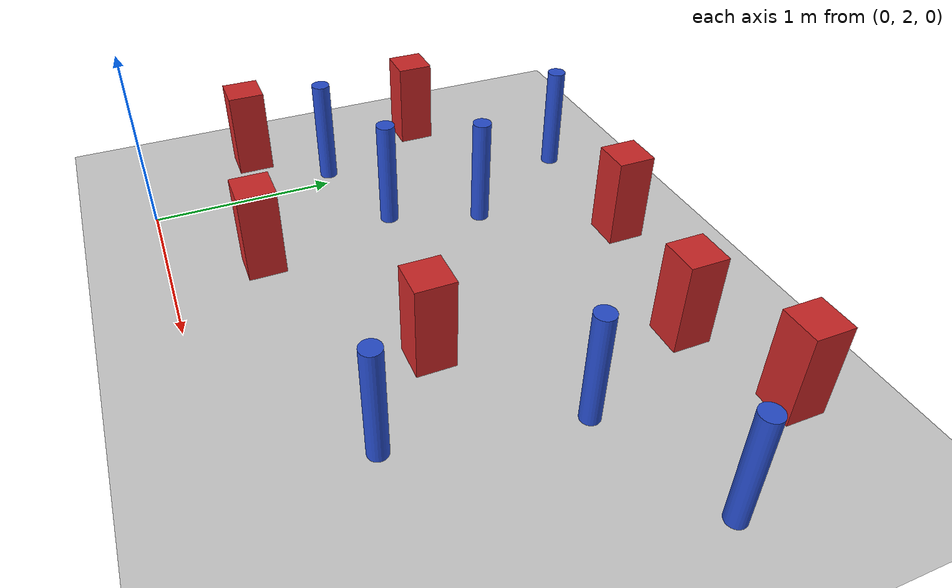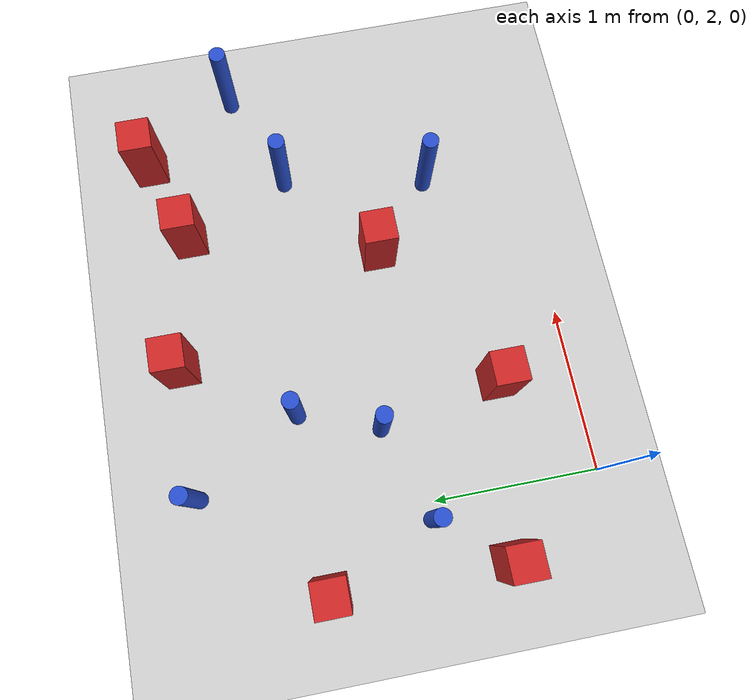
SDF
<sdf version="1.6">
 <world name="default">
  <model name="ground_plane">
   <static>1</static>
   <link name="link">
    <collision name="collision">
     <geometry><plane><normal>0 0 1</normal><size>100 100</size></plane></geometry>
     <surface><friction><ode><mu>100</mu><mu2>50</mu2></ode></friction></surface>
    </collision>
    <visual name="visual">
     <cast_shadows>0</cast_shadows>
     <geometry><plane><normal>0 0 1</normal><size>100 100</size></plane></geometry>
     <material>
      <ambient>1.0 1.0 1.0 1.0</ambient>
      <diffuse>0.8 0.8 0.8 1.0</diffuse>
      <specular>0.01 0.01 0.01 1.000000</specular>
     </material>
    </visual>
   </link>
  </model>
  <model name="pole_obstacle11">
   <static>true</static>
   <pose>0.478664716121 3.2279638088 7.38925637345e-09 -8.471706928e-08 1.24976765089e-08 -1.74513093016e-07</pose>
   <link name="link">
    <pose>0 0 0.3 0 -0 0</pose>
    <inertial>
     <mass>1</mass>
     <inertia><ixx>0.145833</ixx><ixy>0</ixy><ixz>0</ixz><iyy>0.145833</iyy><iyz>0</iyz><izz>0.125</izz></inertia>
    </inertial>
    <collision name="collision">
     <geometry><cylinder><radius>0.05</radius><length>.6</length></cylinder></geometry>
    </collision>
    <visual name="visual">
     <geometry><cylinder><radius>0.05</radius><length>.6</length></cylinder></geometry>
     <material>
      <script><name>Gazebo/Blue</name><uri>file://media/materials/scripts/gazebo.material</uri></script>
     </material>
    </visual>
   </link>
  </model>
  <model name="pole_obstacle14">
   <static>true</static>
   <pose>2.02225817843 2.63889635493 7.38925637345e-09 -8.47170692797e-08 1.24976764891e-08 -1.74513093027e-07</pose>
   <link name="link">
    <pose>0 0 0.3 0 -0 0</pose>
    <inertial>
     <mass>1</mass>
     <inertia><ixx>0.145833</ixx><ixy>0</ixy><ixz>0</ixz><iyy>0.145833</iyy><iyz>0</iyz><izz>0.125</izz></inertia>
    </inertial>
    <collision name="collision">
     <geometry><cylinder><radius>0.05</radius><length>.6</length></cylinder></geometry>
    </collision>
    <visual name="visual">
     <geometry><cylinder><radius>0.05</radius><length>.6</length></cylinder></geometry>
     <material>
      <script><name>Gazebo/Blue</name><uri>file://media/materials/scripts/gazebo.material</uri></script>
     </material>
    </visual>
   </link>
  </model>
  <model name="pole_obstacle19">
   <static>true</static>
   <pose>2.18692887537 3.53944393992 7.38925637345e-09 -8.47170692798e-08 1.24976764939e-08 -1.74513093025e-07</pose>
   <link name="link">
    <pose>0 0 0.3 0 -0 0</pose>
    <inertial>
     <mass>1</mass>
     <inertia><ixx>0.145833</ixx><ixy>0</ixy><ixz>0</ixz><iyy>0.145833</iyy><iyz>0</iyz><izz>0.125</izz></inertia>
    </inertial>
    <collision name="collision">
     <geometry><cylinder><radius>0.05</radius><length>.6</length></cylinder></geometry>
    </collision>
    <visual name="visual">
     <geometry><cylinder><radius>0.05</radius><length>.6</length></cylinder></geometry>
     <material>
      <script><name>Gazebo/Blue</name><uri>file://media/materials/scripts/gazebo.material</uri></script>
     </material>
    </visual>
   </link>
  </model>
  <model name="pole_obstacle33">
   <static>true</static>
   <pose>0.650099446208 3.71073841236 7.38925637345e-09 -8.47170692799e-08 1.2497676509e-08 -1.74513093016e-07</pose>
   <link name="link">
    <pose>0 0 0.3 0 -0 0</pose>
    <inertial>
     <mass>1</mass>
     <inertia><ixx>0.145833</ixx><ixy>0</ixy><ixz>0</ixz><iyy>0.145833</iyy><iyz>0</iyz><izz>0.125</izz></inertia>
    </inertial>
    <collision name="collision">
     <geometry><cylinder><radius>0.05</radius><length>.6</length></cylinder></geometry>
    </collision>
    <visual name="visual">
     <geometry><cylinder><radius>0.05</radius><length>.6</length></cylinder></geometry>
     <material>
      <script><name>Gazebo/Blue</name><uri>file://media/materials/scripts/gazebo.material</uri></script>
     </material>
    </visual>
   </link>
  </model>
  <model name="square_post_obstacle56">
   <static>true</static>
   <pose>0.630769645936 2.4777197629 1.91545236811e-07 -7.35059704564e-06 1.12565212e-07 2.39332434364e-05</pose>
   <link name="link">
    <pose>0 0 0.25 0 -0 0</pose>
    <inertial>
     <mass>100</mass>
     <inertia>
      <ixx>0.166667</ixx>
      <ixy>0</ixy>
      <ixz>0</ixz>
      <iyy>0.166667</iyy>
      <iyz>0</iyz>
      <izz>0.166667</izz>
     </inertia>
    </inertial>
    <collision name="collision"><geometry><box><size>.2 .2 .5</size></box></geometry></collision>
    <visual name="visual">
     <geometry><box><size>.2 .2 .5</size></box></geometry>
     <material>
      <script><name>Gazebo/Red</name><uri>file://media/materials/scripts/gazebo.material</uri></script>
     </material>
    </visual>
   </link>
  </model>
  <model name="square_post_obstacle58">
   <static>true</static>
   <pose>1.89835026861 4.19668472905 1.91545236811e-07 -7.35059704564e-06 1.12565212e-07 2.39332434364e-05</pose>
   <link name="link">
    <pose>0 0 0.25 0 -0 0</pose>
    <inertial>
     <mass>100</mass>
     <inertia>
      <ixx>0.166667</ixx>
      <ixy>0</ixy>
      <ixz>0</ixz>
      <iyy>0.166667</iyy>
      <iyz>0</iyz>
      <izz>0.166667</izz>
     </inertia>
    </inertial>
    <collision name="collision"><geometry><box><size>.2 .2 .5</size></box></geometry></collision>
    <visual name="visual">
     <geometry><box><size>.2 .2 .5</size></box></geometry>
     <material>
      <script><name>Gazebo/Red</name><uri>file://media/materials/scripts/gazebo.material</uri></script>
     </material>
    </visual>
   </link>
  </model>
  <model name="pole_obstacle58">
   <static>true</static>
   <pose>-0.0982627981683 3.03615198063 7.38925637345e-09 -8.471706928e-08 1.24976765098e-08 -1.74513093016e-07</pose>
   <link name="link">
    <pose>0 0 0.3 0 -0 0</pose>
    <inertial>
     <mass>1</mass>
     <inertia><ixx>0.145833</ixx><ixy>0</ixy><ixz>0</ixz><iyy>0.145833</iyy><iyz>0</iyz><izz>0.125</izz></inertia>
    </inertial>
    <collision name="collision">
     <geometry><cylinder><radius>0.05</radius><length>.6</length></cylinder></geometry>
    </collision>
    <visual name="visual">
     <geometry><cylinder><radius>0.05</radius><length>.6</length></cylinder></geometry>
     <material>
      <script><name>Gazebo/Blue</name><uri>file://media/materials/scripts/gazebo.material</uri></script>
     </material>
    </visual>
   </link>
  </model>
  <model name="square_post_obstacle75">
   <static>true</static>
   <pose>1.59171851901 3.03278778535 1.91545236811e-07 -7.35059704564e-06 1.12565212e-07 2.39332434364e-05</pose>
   <link name="link">
    <pose>0 0 0.25 0 -0 0</pose>
    <inertial>
     <mass>100</mass>
     <inertia>
      <ixx>0.166667</ixx>
      <ixy>0</ixy>
      <ixz>0</ixz>
      <iyy>0.166667</iyy>
      <iyz>0</iyz>
      <izz>0.166667</izz>
     </inertia>
    </inertial>
    <collision name="collision"><geometry><box><size>.2 .2 .5</size></box></geometry></collision>
    <visual name="visual">
     <geometry><box><size>.2 .2 .5</size></box></geometry>
     <material>
      <script><name>Gazebo/Red</name><uri>file://media/materials/scripts/gazebo.material</uri></script>
     </material>
    </visual>
   </link>
  </model>
  <model name="pole_obstacle105">
   <static>true</static>
   <pose>0.265290542335 4.36334637209 7.38925637345e-09 -8.47170692799e-08 1.24976765101e-08 -1.74513093014e-07</pose>
   <link name="link">
    <pose>0 0 0.3 0 -0 0</pose>
    <inertial>
     <mass>1</mass>
     <inertia><ixx>0.145833</ixx><ixy>0</ixy><ixz>0</ixz><iyy>0.145833</iyy><iyz>0</iyz><izz>0.125</izz></inertia>
    </inertial>
    <collision name="collision">
     <geometry><cylinder><radius>0.05</radius><length>.6</length></cylinder></geometry>
    </collision>
    <visual name="visual">
     <geometry><cylinder><radius>0.05</radius><length>.6</length></cylinder></geometry>
     <material>
      <script><name>Gazebo/Blue</name><uri>file://media/materials/scripts/gazebo.material</uri></script>
     </material>
    </visual>
   </link>
  </model>
  <model name="square_post_obstacle95">
   <static>true</static>
   <pose>-0.386877009004 3.68334791112 1.91545236811e-07 -7.35059704564e-06 1.12565212e-07 2.39332434364e-05</pose>
   <link name="link">
    <pose>0 0 0.25 0 -0 0</pose>
    <inertial>
     <mass>100</mass>
     <inertia>
      <ixx>0.166667</ixx>
      <ixy>0</ixy>
      <ixz>0</ixz>
      <iyy>0.166667</iyy>
      <iyz>0</iyz>
      <izz>0.166667</izz>
     </inertia>
    </inertial>
    <collision name="collision"><geometry><box><size>.2 .2 .5</size></box></geometry></collision>
    <visual name="visual">
     <geometry><box><size>.2 .2 .5</size></box></geometry>
     <material>
      <script><name>Gazebo/Red</name><uri>file://media/materials/scripts/gazebo.material</uri></script>
     </material>
    </visual>
   </link>
  </model>
  <model name="pole_obstacle108">
   <static>true</static>
   <pose>2.83360505329 3.79996117749 7.38925637345e-09 -8.47170692798e-08 1.24976764939e-08 -1.74513093025e-07</pose>
   <link name="link">
    <pose>0 0 0.3 0 -0 0</pose>
    <inertial>
     <mass>1</mass>
     <inertia><ixx>0.145833</ixx><ixy>0</ixy><ixz>0</ixz><iyy>0.145833</iyy><iyz>0</iyz><izz>0.125</izz></inertia>
    </inertial>
    <collision name="collision">
     <geometry><cylinder><radius>0.05</radius><length>.6</length></cylinder></geometry>
    </collision>
    <visual name="visual">
     <geometry><cylinder><radius>0.05</radius><length>.6</length></cylinder></geometry>
     <material>
      <script><name>Gazebo/Blue</name><uri>file://media/materials/scripts/gazebo.material</uri></script>
     </material>
    </visual>
   </link>
  </model>
  <model name="square_post_obstacle142">
   <static>true</static>
   <pose>-0.404198262864 2.63922497113 1.91545236811e-07 -7.35059704564e-06 1.12565212e-07 2.39332434364e-05</pose>
   <link name="link">
    <pose>0 0 0.25 0 -0 0</pose>
    <inertial>
     <mass>100</mass>
     <inertia>
      <ixx>0.166667</ixx>
      <ixy>0</ixy>
      <ixz>0</ixz>
      <iyy>0.166667</iyy>
      <iyz>0</iyz>
      <izz>0.166667</izz>
     </inertia>
    </inertial>
    <collision name="collision"><geometry><box><size>.2 .2 .5</size></box></geometry></collision>
    <visual name="visual">
     <geometry><box><size>.2 .2 .5</size></box></geometry>
     <material>
      <script><name>Gazebo/Red</name><uri>file://media/materials/scripts/gazebo.material</uri></script>
     </material>
    </visual>
   </link>
  </model>
  <model name="square_post_obstacle154">
   <static>true</static>
   <pose>1.06400520829 4.35960703123 1.91545236811e-07 -7.35059704564e-06 1.12565212e-07 2.39332434364e-05</pose>
   <link name="link">
    <pose>0 0 0.25 0 -0 0</pose>
    <inertial>
     <mass>100</mass>
     <inertia>
      <ixx>0.166667</ixx>
      <ixy>0</ixy>
      <ixz>0</ixz>
      <iyy>0.166667</iyy>
      <iyz>0</iyz>
      <izz>0.166667</izz>
     </inertia>
    </inertial>
    <collision name="collision"><geometry><box><size>.2 .2 .5</size></box></geometry></collision>
    <visual name="visual">
     <geometry><box><size>.2 .2 .5</size></box></geometry>
     <material>
      <script><name>Gazebo/Red</name><uri>file://media/materials/scripts/gazebo.material</uri></script>
     </material>
    </visual>
   </link>
  </model>
  <model name="square_post_obstacle220">
   <static>true</static>
   <pose>2.4486499648 4.38382998808 1.91545236811e-07 -7.35059704564e-06 1.12565212e-07 2.39332434364e-05</pose>
   <link name="link">
    <pose>0 0 0.25 0 -0 0</pose>
    <inertial>
     <mass>100</mass>
     <inertia>
      <ixx>0.166667</ixx>
      <ixy>0</ixy>
      <ixz>0</ixz>
      <iyy>0.166667</iyy>
      <iyz>0</iyz>
      <izz>0.166667</izz>
     </inertia>
    </inertial>
    <collision name="collision"><geometry><box><size>.2 .2 .5</size></box></geometry></collision>
    <visual name="visual">
     <geometry><box><size>.2 .2 .5</size></box></geometry>
     <material>
      <script><name>Gazebo/Red</name><uri>file://media/materials/scripts/gazebo.material</uri></script>
     </material>
    </visual>
   </link>
  </model>
 </world>
</sdf>
